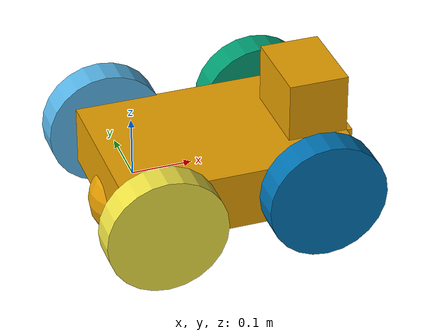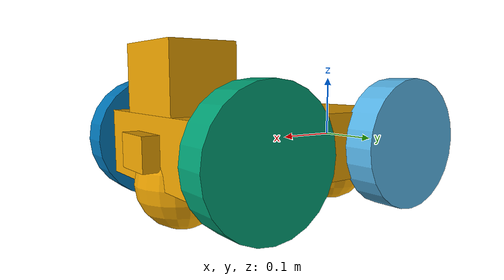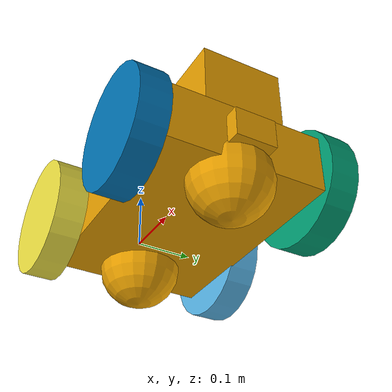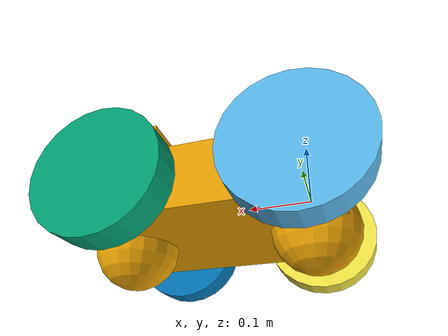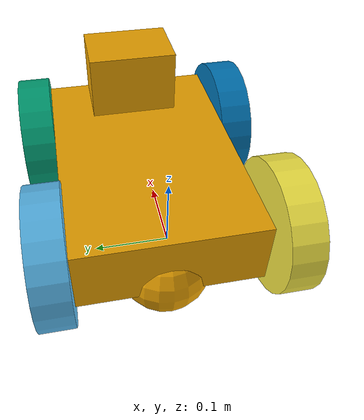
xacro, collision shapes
<?xml version="1.0" ?>
<!-- |    This document was autogenerated by xacro from new_robot.urdf                 | -->
<!-- |    EDITING THIS FILE BY HAND IS NOT RECOMMENDED                                 | -->
<robot name="my_robot1">
  <xacro:include filename="$(find my_robot)/urdf/my_robot.gazebo"/>
  <joint name="my_robot1__left_wheel_hinge" type="revolute">
    <parent link="my_robot1__robot_footprint"/>
    <child link="my_robot1__left_wheel"/>
    <origin rpy="0  0  0" xyz="0       0.16245  0"/>
    <axis xyz="0  1  0"/>
    <limit effort="-1.0" lower="-1e+16" upper="1e+16" velocity="-1.0"/>
  </joint>
  <joint name="my_robot1__right_wheel_hinge" type="revolute">
    <parent link="my_robot1__robot_footprint"/>
    <child link="my_robot1__right_wheel"/>
    <origin rpy="0  0  0" xyz="0      -0.16671  0"/>
    <axis xyz="0  1  0"/>
    <limit effort="-1.0" lower="-1e+16" upper="1e+16" velocity="-1.0"/>
  </joint>
  <joint name="my_robot1__robot_footprint_JOINT_1" type="revolute">
    <parent link="my_robot1__robot_footprint"/>
    <child link="my_robot1__right_wheel_clone_0"/>
    <origin rpy="0.00000000e+00  -6.10000000e-04  -5.00000000e-05" xyz="2.71230000e-01  -1.58130000e-01   1.60000000e-04"/>
    <axis xyz="1.00000000e+00   5.00000000e-05  -6.10000000e-04"/>
    <limit effort="-1.0" lower="-1.79769e+308" upper="1.79769e+308" velocity="-1.0"/>
  </joint>
  <joint name="my_robot1__robot_footprint_JOINT_3" type="revolute">
    <parent link="my_robot1__robot_footprint"/>
    <child link="my_robot1__left_wheel_clone"/>
    <origin rpy="0.00000000e+00  -6.10000000e-04  -5.00000000e-05" xyz="2.71250000e-01   1.65540000e-01   1.60000000e-04"/>
    <axis xyz="-5.00000000e-05   1.00000000e+00   0.00000000e+00"/>
    <limit effort="-1.0" lower="-1.79769e+308" upper="1.79769e+308" velocity="-1.0"/>
  </joint>
  <link name="my_robot1__robot_footprint">
    <inertial>
      <mass value="22.6037"/>
      <origin rpy="0  0  0" xyz="6.00000000e-05   0.00000000e+00   0.00000000e+00"/>
      <inertia ixx="0" ixy="0" ixz="-1.48675e-07" iyy="0" iyz="0" izz="0"/>
    </inertial>
    <collision name="my_robot1__robot_footprint_fixed_joint_lump__chassis_collision_collision">
      <origin rpy="0  0  0" xyz="0.14614  0.0037   0"/>
      <geometry>
        <box size="0.4 0.273634 0.1"/>
      </geometry>
    </collision>
    <collision name="my_robot1__robot_footprint_fixed_joint_lump__front_caster_collision_collision_2">
      <origin rpy="0  0  0" xyz="0.29614  0.0037  -0.05"/>
      <geometry>
        <sphere radius="0.068752"/>
      </geometry>
    </collision>
    <collision name="my_robot1__robot_footprint_fixed_joint_lump__back_caster_collision_collision_1">
      <origin rpy="0  0  0" xyz="-0.00385  0.0037  -0.05"/>
      <geometry>
        <sphere radius="0.068752"/>
      </geometry>
    </collision>
    <collision name="my_robot1__robot_footprint_fixed_joint_lump__hokuyo_collision_collision_4">
      <origin rpy="0  0  0" xyz="0.29614  0.0037   0.09999"/>
      <geometry>
        <box size="0.1 0.137779 0.1"/>
      </geometry>
    </collision>
    <collision name="my_robot1__robot_footprint_fixed_joint_lump__camera_collision_collision_3">
      <origin rpy="0  0  0" xyz="0.34614  0.0037   0"/>
      <geometry>
        <box size="0.05 0.068889 0.05"/>
      </geometry>
    </collision>
    <visual name="my_robot1__robot_footprint_fixed_joint_lump__chassis_visual_visual">
      <origin rpy="0  0  0" xyz="0.14614  0.0037   0"/>
      <geometry>
        <box size="0.4 0.273634 0.1"/>
      </geometry>
    </visual>
    <visual name="my_robot1__robot_footprint_fixed_joint_lump__back_caster_visual_visual_1">
      <origin rpy="0  0  0" xyz="-0.00385  0.0037  -0.05"/>
      <geometry>
        <sphere radius="0.0688894"/>
      </geometry>
    </visual>
    <visual name="my_robot1__robot_footprint_fixed_joint_lump__front_caster_visual_visual_2">
      <origin rpy="0  0  0" xyz="0.29614  0.0037  -0.05"/>
      <geometry>
        <sphere radius="0.0688894"/>
      </geometry>
    </visual>
    <visual name="my_robot1__robot_footprint_fixed_joint_lump__camera_visual_visual_3">
      <origin rpy="0  0  0" xyz="0.34614  0.0037   0"/>
      <geometry>
        <box size="0.05 0.068889 0.05"/>
      </geometry>
    </visual>
    <visual name="my_robot1__robot_footprint_fixed_joint_lump__hokuyo_visual_visual_4">
      <origin rpy="0  0  0" xyz="0.29614  0.0037   0.09999"/>
      <geometry>
        <mesh filename="package://my_robot/meshes/hokuyo.dae"/>
      </geometry>
    </visual>
  </link>
  <link name="my_robot1__left_wheel">
    <inertial>
      <mass value="5"/>
      <origin rpy="0      1.5707  1.5707" xyz="0  0  0"/>
      <inertia ixx="0.1" ixy="0" ixz="0" iyy="0.1" iyz="0" izz="0.1"/>
    </inertial>
    <collision name="my_robot1__left_wheel_collision_collision">
      <origin rpy="3.14159  1.57079 -1.57089" xyz="0  0  0"/>
      <geometry>
        <cylinder length="0.05" radius="0.1"/>
      </geometry>
    </collision>
    <visual name="my_robot1__left_wheel_visual_visual">
      <origin rpy="-3.13202  1.57079 -1.56132" xyz="0  0  0"/>
      <geometry>
        <cylinder length="0.05" radius="0.1"/>
      </geometry>
    </visual>
  </link>
  <link name="my_robot1__left_wheel_clone">
    <inertial>
      <mass value="5"/>
      <origin rpy="0      1.5707  1.5707" xyz="0  0  0"/>
      <inertia ixx="0.1" ixy="0" ixz="0" iyy="0.1" iyz="0" izz="0.1"/>
    </inertial>
    <collision name="my_robot1__left_wheel_collision_collision">
      <origin rpy="-3.13202  1.57079 -1.56132" xyz="0  0  0"/>
      <geometry>
        <cylinder length="0.05" radius="0.1"/>
      </geometry>
    </collision>
    <visual name="my_robot1__left_wheel_visual_visual">
      <origin rpy="-3.12268  1.57079 -1.55198" xyz="0  0  0"/>
      <geometry>
        <cylinder length="0.05" radius="0.1"/>
      </geometry>
    </visual>
  </link>
  <link name="my_robot1__right_wheel">
    <inertial>
      <mass value="5"/>
      <origin rpy="0      1.5707  1.5707" xyz="0  0  0"/>
      <inertia ixx="0.1" ixy="0" ixz="0" iyy="0.1" iyz="0" izz="0.1"/>
    </inertial>
    <collision name="my_robot1__right_wheel_collision_collision">
      <origin rpy="3.14159  1.57079 -1.57089" xyz="0  0  0"/>
      <geometry>
        <cylinder length="0.05" radius="0.1"/>
      </geometry>
    </collision>
    <visual name="my_robot1__right_wheel_visual_visual">
      <origin rpy="-3.12268  1.57079 -1.55198" xyz="0  0  0"/>
      <geometry>
        <cylinder length="0.05" radius="0.1"/>
      </geometry>
    </visual>
  </link>
  <link name="my_robot1__right_wheel_clone_0">
    <inertial>
      <mass value="5"/>
      <origin rpy="0      1.5707  1.5707" xyz="0  0  0"/>
      <inertia ixx="0.1" ixy="0" ixz="0" iyy="0.1" iyz="0" izz="0.1"/>
    </inertial>
    <collision name="my_robot1__right_wheel_collision_collision">
      <origin rpy="-3.13202  1.57079 -1.56132" xyz="0  0  0"/>
      <geometry>
        <cylinder length="0.05" radius="0.1"/>
      </geometry>
    </collision>
    <visual name="my_robot1__right_wheel_visual_visual">
      <origin rpy="-3.12268  1.57079 -1.55198" xyz="0  0  0"/>
      <geometry>
        <cylinder length="0.05" radius="0.1"/>
      </geometry>
    </visual>
  </link>
</robot>
